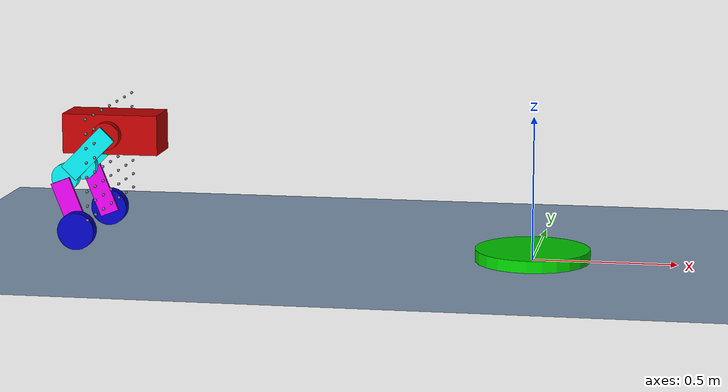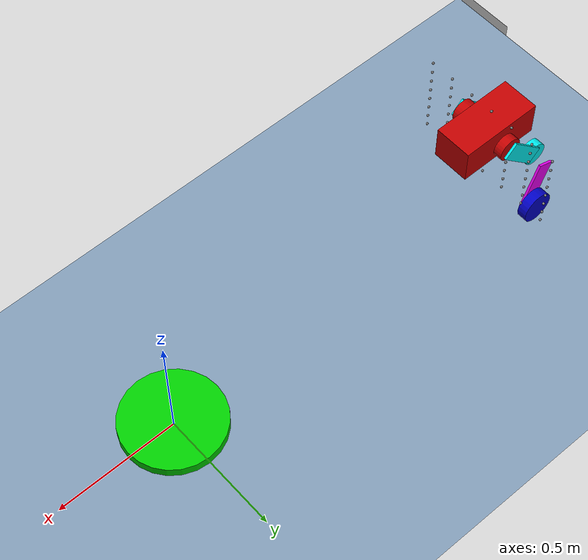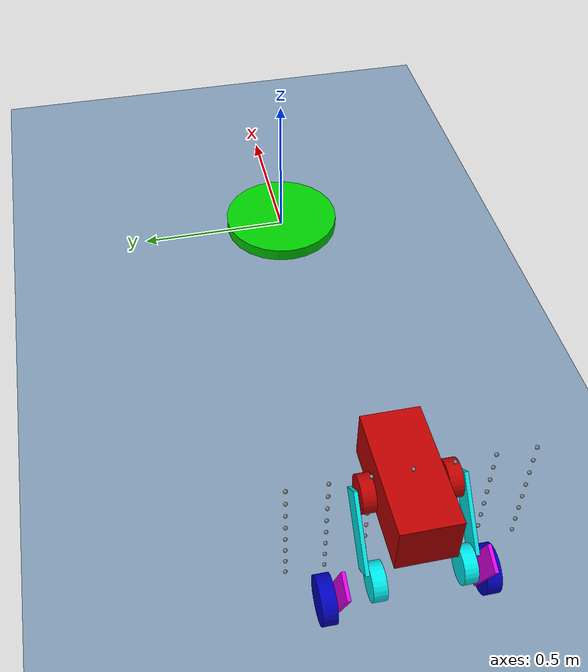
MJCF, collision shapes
<mujoco model="arx7">
  <compiler angle="radian" meshdir="./meshes/"/>
  <option timestep="0.002" integrator="RK4" gravity="0 0 -9.806" solver="Newton" noslip_iterations="0"/>
  <size njmax="10000" nconmax="10000"/>
  <default>
    <geom contype="1" conaffinity="1" friction="0.6 0.3 0.3" rgba="0.5 0.6 0.7 1" margin="0.001" group="0"/>
    <joint limited="true" frictionloss="0.5" damping="45" armature="0.1"/>
    <position gear='20' kp='10' ctrllimited="true" ctrlrange="-6 6"/>
  </default>

  <asset>
    <mesh name="base_link" file="chassis/base_link.STL"/>
    <mesh name="left_thigh" file="chassis/left_thigh.STL"/>
    <mesh name="left_shin" file="chassis/left_shin.STL"/>
    <mesh name="left_wheel" file="chassis/left_wheel.STL"/>
    <mesh name="right_thigh" file="chassis/right_thigh.STL"/>
    <mesh name="right_shin" file="chassis/right_shin.STL"/>
    <mesh name="right_wheel" file="chassis/right_wheel.STL"/>

    <mesh name="stair1" file="stair/stair1.STL"/>
    <mesh name="stair2" file="stair/stair2.STL"/>
    <mesh name="stair3" file="stair/stair3.STL"/>
    <mesh name="stair4" file="stair/stair4.STL"/>
    <mesh name="stair5" file="stair/stair5.STL"/>
  </asset>

  <asset>
    <texture name="grid" type="2d" builtin="checker" rgb1=".9 .8 .7" rgb2=".4 .4 .4" width="300" height="300" mark="edge" markrgb=".2 .3 .4"/>
    <material name="grid" texture="grid" texrepeat="2 2" texuniform="true" reflectance=".2"/>
  </asset>

  <visual>
    <global offwidth="1920" offheight="1080"/>
    <rgba com="0.502 1.0 0 0.5" contactforce="0.98 0.4 0.4 0.7" contactpoint="1.0 1.0 0.6 0.4" rangefinder="0 0 0 0"/>
    <scale com="0.2" forcewidth="0.035" contactwidth="0.10" contactheight="0.04"/>
  </visual>

  <worldbody>
    <light directional="true" diffuse=".8 .8 .8" pos="0 0 10" dir="0 0 -10"/>
    <light pos="0.5 -.4 1." dir="1 2 -1.5" diffuse=".6 .6 .6"/>
    <camera name="top" mode='targetbody' target='base_link' pos="-8. -8. 10." xyaxes="1.000 0.0 0.000 0.0 1.000 0.017"/>
    <geom name="ground" type="plane" pos="0 0 0" size="20 20 0.1" material="grid"/>

    <!-- ======= TARGET ======= -->
    <body name='end_ref' pos='0 0 0'>
      <joint name='end_x' type='slide' axis='1 0 0' limited='true' range='-20 20' />
      <joint name='end_y' type='slide' axis='0 1 0' limited='true' range='-20 20' />
      <geom name="end" type="cylinder" size="0.2 0.04 0" pos="0 0 0" rgba="0 .8 0 1" contype="0" conaffinity="0"/>
    </body>

    <!-- ======= OBSTACLE ======= -->
    <body name='mocap1' mocap='true' pos='-3 -3 0'>
      <geom name="plat11" type="box" size="0.5 2.5 .05" pos="0 0 0" rgba=".8 .8 .8 1"/>
    </body>

    <!-- ======= ROBOT ======= -->
    <body name="base_link" pos="-1.5 0 0.35" euler="0 0 0">
      <camera name="track" mode="track" fovy="45" pos="1 -2. 0.2" xyaxes="0.866 0.5 0 0 0 1"/>
      <inertial pos="0.018885 0.00062964 0.06018" quat="-0.064773 0.618315 0.0968439 0.777246" mass="4.6733" diaginertia="0.054592 0.0348635 0.0323885"/>
      <joint name="floating_base" type="free" limited="false" frictionloss=".001" damping=".01" armature="0."/>
      <geom name="base1" type="mesh" contype="0" conaffinity="0" group="1" density="0" rgba="0.75294 0 0 1" mesh="base_link"/>
      <geom name="base2" size="0.17 0.077 0.07" pos="0.02 0 0.06" group="10" type="box" rgba="0.75294 0 0 0.000987654321"/>
      <geom name="base3" size="0.048 0.0175" pos="0.017241 0.106 0.0613" quat="0.499998 -0.500002 0.5 0.5" type="cylinder" group="10" rgba="0.75294 0 0 0.000987654321"/>
      <geom name="base4" size="0.048 0.0175" pos="0.017241 -0.106 0.0613" quat="0.499998 -0.500002 0.5 0.5" type="cylinder" group="10" rgba="0.75294 0 0 0.000987654321"/>
      <site name="imu" pos="0 0 0"/>
      <site name="lidar01" pos="0   -.30  .15"   zaxis=".7071 -.7071 0"/>
      <site name="lidar02" pos="0   -.20  .15"   zaxis=".8660 -.5000 0"/>
      <site name="lidar03" pos="0   -.10  .15"   zaxis=".9659 -.2588 0"/>
      <site name="lidar04" pos="0   0.00  .15"   zaxis="1 0 0"/>
      <site name="lidar05" pos="0   0.10  .15"   zaxis=".9659 .2588 0"/>
      <site name="lidar06" pos="0   0.20  .15"  zaxis=".8660 .5000 0"/>
      <site name="lidar07" pos="0   0.30  .15" zaxis=".1 .1 0"/>
      <site name="lidar08" pos="0   -.30  .10" zaxis="1 0 0"/>
      <site name="lidar09" pos="0   -.20  .10" zaxis="1 0 0"/>
      <site name="lidar10" pos="0   -.10  .10" zaxis="1 0 0"/>
      <site name="lidar11" pos="0   0.00  .10" zaxis="1 0 0"/>
      <site name="lidar12" pos="0   0.10  .10" zaxis="1 0 0"/>
      <site name="lidar13" pos="0   0.20  .10" zaxis="1 0 0"/>
      <site name="lidar14" pos="0   0.30  .10" zaxis="1 0 0"/>
      <site name="lidar15" pos="0   -.30  .05" zaxis="1 0 0"/>
      <site name="lidar16" pos="0   -.20  .05" zaxis="1 0 0"/>
      <site name="lidar17" pos="0   -.10  .05" zaxis="1 0 0"/>
      <site name="lidar18" pos="0   0.00  .05" zaxis="1 0 0"/>
      <site name="lidar19" pos="0   0.10  .05" zaxis="1 0 0"/>
      <site name="lidar20" pos="0   0.20  .05" zaxis="1 0 0"/>
      <site name="lidar21" pos="0   0.30  .05" zaxis="1 0 0"/>
      <site name="lidar22" pos="0   -.30  .00" zaxis="1 0 0"/>
      <site name="lidar23" pos="0   -.20  .00" zaxis="1 0 0"/>
      <site name="lidar24" pos="0   -.10  .00" zaxis="1 0 0"/>
      <site name="lidar25" pos="0   0.00  .00" zaxis="1 0 0"/>
      <site name="lidar26" pos="0   0.10  .00" zaxis="1 0 0"/>
      <site name="lidar27" pos="0   0.20  .00" zaxis="1 0 0"/>
      <site name="lidar28" pos="0   0.30  .00" zaxis="1 0 0"/>
      <site name="lidar29" pos="0   -.30  -.05" zaxis=".9659 0 -.2588"/>
      <site name="lidar30" pos="0   -.20  -.05" zaxis=".9659 0 -.2588"/>
      <site name="lidar31" pos="0   -.10  -.05" zaxis=".9659 0 -.2588"/>
      <site name="lidar32" pos="0   0.00  -.05" zaxis=".9659 0 -.2588"/>
      <site name="lidar33" pos="0   0.10  -.05" zaxis=".9659 0 -.2588"/>
      <site name="lidar34" pos="0   0.20  -.05" zaxis=".9659 0 -.2588"/>
      <site name="lidar35" pos="0   0.30  -.05" zaxis=".9659 0 -.2588"/>
      <site name="lidar36" pos="0   -.30  -.10" zaxis=".8660 0 -.5"/>
      <site name="lidar37" pos="0   -.20  -.10" zaxis=".8660 0 -.5"/>
      <site name="lidar38" pos="0   -.10  -.10" zaxis=".8660 0 -.5"/>
      <site name="lidar39" pos="0   0.00  -.10" zaxis=".8660 0 -.5"/>
      <site name="lidar40" pos="0   0.10  -.10" zaxis=".8660 0 -.5"/>
      <site name="lidar41" pos="0   0.20  -.10" zaxis=".8660 0 -.5"/>
      <site name="lidar42" pos="0   0.30  -.10" zaxis=".8660 0 -.5"/>
      <site name="lidar43" pos="0   -.30  -.15" zaxis=".8660 0 -.5"/>
      <site name="lidar44" pos="0   -.20  -.15" zaxis=".8660 0 -.5"/>
      <site name="lidar45" pos="0   -.10  -.15" zaxis=".8660 0 -.5"/>
      <site name="lidar46" pos="0   0.00  -.15" zaxis=".8660 0 -.5"/>
      <site name="lidar47" pos="0   0.10  -.15" zaxis=".8660 0 -.5"/>
      <site name="lidar48" pos="0   0.20  -.15" zaxis=".8660 0 -.5"/>
      <site name="lidar49" pos="0   0.30  -.15" zaxis=".8660 0 -.5"/>
      <site name="lidar50" pos="0   -.30  -.20" zaxis=".8660 0 -.5"/>
      <site name="lidar51" pos="0   -.20  -.20" zaxis=".8660 0 -.5"/>
      <site name="lidar52" pos="0   -.10  -.20" zaxis=".8660 0 -.5"/>
      <site name="lidar53" pos="0   0.00  -.20" zaxis=".8660 0 -.5"/>
      <site name="lidar54" pos="0   0.10  -.20" zaxis=".8660 0 -.5"/>
      <site name="lidar55" pos="0   0.20  -.20" zaxis=".8660 0 -.5"/>
      <site name="lidar56" pos="0   0.30  -.20" zaxis=".8660 0 -.5"/>

      <body name="left_thigh" pos="0.017241 0.13399 0.0613" euler="-1.57 0 2.35">
        <inertial pos="0.17494 0.0025294 0.012308" quat="0.0283574 0.728032 0.00169629 0.684954" mass="1.3343" diaginertia="0.00985328 0.00920167 0.00123438"/>
        <joint name="left_hip" pos="0 0 0" axis="0 0 1" range="-15 15"/>
        <geom name="left_thigh1" type="mesh" contype="0" conaffinity="0" group="1" density="0" rgba="0.89804 0.91765 0 1" mesh="left_thigh"/>
        <geom name="left_thigh2" size="0.1 0.035 0.005" pos="0.085 0 0" type="box" group="10" rgba="0 0.91765 0.92941 0.000987654321"/>
        <geom name="left_thigh3" size="0.048 0.0175" pos="0.21 0 -0.02375" type="cylinder" group="10" rgba="0 0.91765 0.92941 0.000987654321"/>
        <body name="left_shin" pos="0.21 0 0.0475" euler="0 0 -1.15">
          <inertial pos="0.15612 0.00046249 0.020119" quat="-0.0169558 0.755863 -0.00997261 0.654434" mass="0.94398" diaginertia="0.00396686 0.00358627 0.000682696"/>
          <joint name="left_knee" pos="0 0 0" axis="0 0 1" range="-15 15"/>
          <geom type="mesh" contype="0" conaffinity="0" group="1" density="0" rgba="0.89804 0.91765 0 1" mesh="left_shin"/>
          <geom size="0.1 0.035 0.005" pos="0.1 0 0" type="box" rgba="0.89804 0 0.92941 0.000987654321"/>
          <body name="left_wheel" pos="0.18 0 0.0305">
            <inertial pos="0 0 0.0012686" quat="0.5 0.5 -0.5 0.5" mass="0.44583" diaginertia="0.0014254 0.00076522 0.00076522"/>
            <joint name="left_ankle" pos="0 0 0" axis="0 0 1" limited="false"/>
            <geom type="mesh" contype="0" conaffinity="0" group="1" density="0" rgba="0.75294 0 0 1" mesh="left_wheel"/>
            <geom size="0.065 0.02" type="cylinder" rgba="0 0 0.75294 0.000987654321"/>
          </body>
        </body>
      </body>
      <body name="right_thigh" pos="0.017241 -0.13501 0.0613" euler="-1.57 0 2.35">
        <inertial pos="0.17494 0.0025279 -0.012308" quat="-0.00169159 0.684955 -0.0283402 0.728032" mass="1.3343" diaginertia="0.00985329 0.00920166 0.00123441"/>
        <joint name="right_hip" pos="0 0 0" axis="0 0 1" range="-15 15"/>
        <geom name="right_thigh1" type="mesh" contype="0" conaffinity="0" group="1" density="0" rgba="0.89804 0.91765 0 1" mesh="right_thigh"/>
        <geom name="right_thigh2" size="0.1 0.035 0.005" pos="0.085 0 0" type="box" group="10" rgba="0 0.91765 0.92941 0.000987654321"/>
        <geom name="right_thigh3" size="0.048 0.0175" pos="0.21 0 0.02375" type="cylinder" group="10" rgba="0 0.91765 0.92941 0.000987654321"/>
        <body name="right_shin" pos="0.21 0 -0.0475" euler="0 0 -1.15">
          <inertial pos="0.15612 0.00046556 -0.020119" quat="0.00996675 0.654435 0.0169079 0.755863" mass="0.94398" diaginertia="0.00396686 0.00358627 0.000682701"/>
          <joint name="right_knee" pos="0 0 0" axis="0 0 1" range="-15 15"/>
          <geom type="mesh" contype="0" conaffinity="0" group="1" density="0" rgba="0.89804 0.91765 0 1" mesh="right_shin"/>
          <geom size="0.1 0.035 0.005" pos="0.1 0 0" type="box" rgba="0.89804 0 0.92941 0.000987654321"/>
          <body name="right_wheel" pos="0.18 0 -0.0305">
            <inertial pos="0 0 -0.0012686" quat="0.5 0.5 -0.5 0.5" mass="0.44583" diaginertia="0.0014254 0.00076522 0.00076522"/>
            <joint name="right_ankle" pos="0 0 0" axis="0 0 1" limited="false"/>
            <geom type="mesh" contype="0" conaffinity="0" group="1" density="0" rgba="0.75294 0 0 1" mesh="right_wheel"/>
            <geom size="0.065 0.02" type="cylinder" rgba="0 0 0.75294 0.000987654321"/>
          </body>
        </body>
      </body>
    </body>
  </worldbody>
  <actuator>
    <position name="left_hip_motor" joint="left_hip"/>
    <position name="left_knee_motor" joint="left_knee"/>
    <position name="left_ankle_motor" joint="left_ankle" gear='5' kp='20'/>
    <position name="right_hip_motor" joint="right_hip"/>
    <position name="right_knee_motor" joint="right_knee"/>
    <position name="right_ankle_motor" joint="right_ankle" gear='5' kp='20'/>
  </actuator>

  <sensor>
    <rangefinder name="l01" site="lidar01"/>
    <rangefinder name="l02" site="lidar02"/>
    <rangefinder name="l03" site="lidar03"/>
    <rangefinder name="l04" site="lidar04"/>
    <rangefinder name="l05" site="lidar05"/>
    <rangefinder name="l06" site="lidar06"/>
    <rangefinder name="l07" site="lidar07"/>
    <rangefinder name="l08" site="lidar08"/>
    <rangefinder name="l09" site="lidar09"/>
    <rangefinder name="l10" site="lidar10"/>
    <rangefinder name="l11" site="lidar11"/>
    <rangefinder name="l12" site="lidar12"/>
    <rangefinder name="l13" site="lidar13"/>
    <rangefinder name="l14" site="lidar14"/>
    <rangefinder name="l15" site="lidar15"/>
    <rangefinder name="l16" site="lidar16"/>
    <rangefinder name="l17" site="lidar17"/>
    <rangefinder name="l18" site="lidar18"/>
    <rangefinder name="l19" site="lidar19"/>
    <rangefinder name="l20" site="lidar20"/>
    <rangefinder name="l21" site="lidar21"/>
    <rangefinder name="l22" site="lidar22"/>
    <rangefinder name="l23" site="lidar23"/>
    <rangefinder name="l24" site="lidar24"/>
    <rangefinder name="l25" site="lidar25"/>
    <rangefinder name="l26" site="lidar26"/>
    <rangefinder name="l27" site="lidar27"/>
    <rangefinder name="l28" site="lidar28"/>
    <rangefinder name="l29" site="lidar29"/>
    <rangefinder name="l30" site="lidar30"/>
    <rangefinder name="l31" site="lidar31"/>
    <rangefinder name="l32" site="lidar32"/>
    <rangefinder name="l33" site="lidar33"/>
    <rangefinder name="l34" site="lidar34"/>
    <rangefinder name="l35" site="lidar35"/>
    <rangefinder name="l36" site="lidar36"/>
    <rangefinder name="l37" site="lidar37"/>
    <rangefinder name="l38" site="lidar38"/>
    <rangefinder name="l39" site="lidar39"/>
    <rangefinder name="l40" site="lidar40"/>
    <rangefinder name="l41" site="lidar41"/>
    <rangefinder name="l42" site="lidar42"/>
    <rangefinder name="l43" site="lidar43"/>
    <rangefinder name="l44" site="lidar44"/>
    <rangefinder name="l45" site="lidar45"/>
    <rangefinder name="l46" site="lidar46"/>
    <rangefinder name="l47" site="lidar47"/>
    <rangefinder name="l48" site="lidar48"/>
    <rangefinder name="l49" site="lidar49"/>
    <rangefinder name="l50" site="lidar42"/>
    <rangefinder name="l51" site="lidar43"/>
    <rangefinder name="l52" site="lidar44"/>
    <rangefinder name="l53" site="lidar45"/>
    <rangefinder name="l54" site="lidar46"/>
    <rangefinder name="l55" site="lidar47"/>
    <rangefinder name="l56" site="lidar48"/>
  </sensor>

</mujoco>
